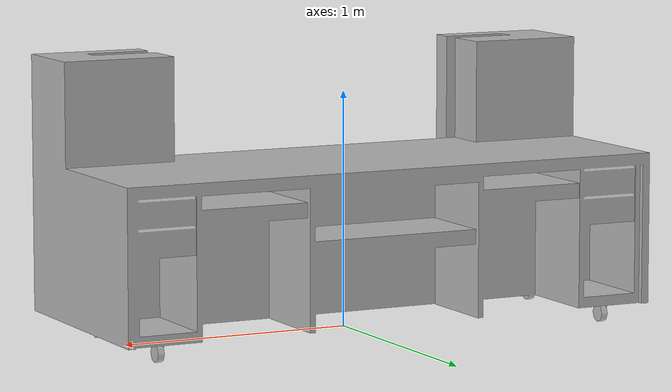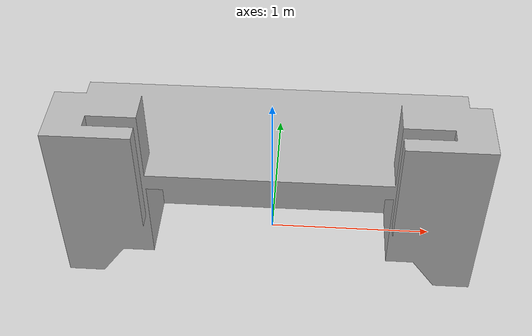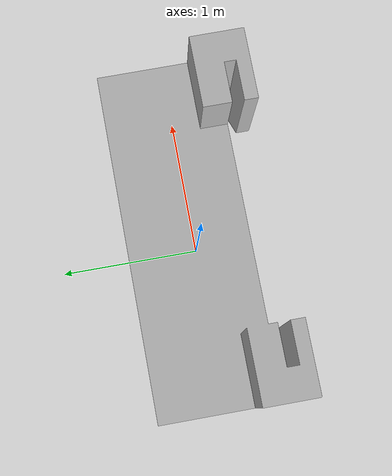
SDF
<?xml version='1.0' encoding='utf-8'?>
<sdf version="1.6">
  <model name="MainTable">
   <static>true</static>
    <link name="body">
      <pose>0 0 0 0 0 0</pose>

      <visual name="visual">
        <geometry>
          <mesh>
            <uri>model://MainTable/meshes/MainTable.obj</uri>
          </mesh>
        </geometry>
      </visual>

      <collision name="collision">
        <geometry>
          <mesh>
            <uri>model://MainTable/meshes/MainTable.obj</uri>
          </mesh>
        </geometry>
      </collision>

    </link>
  </model>
</sdf>
